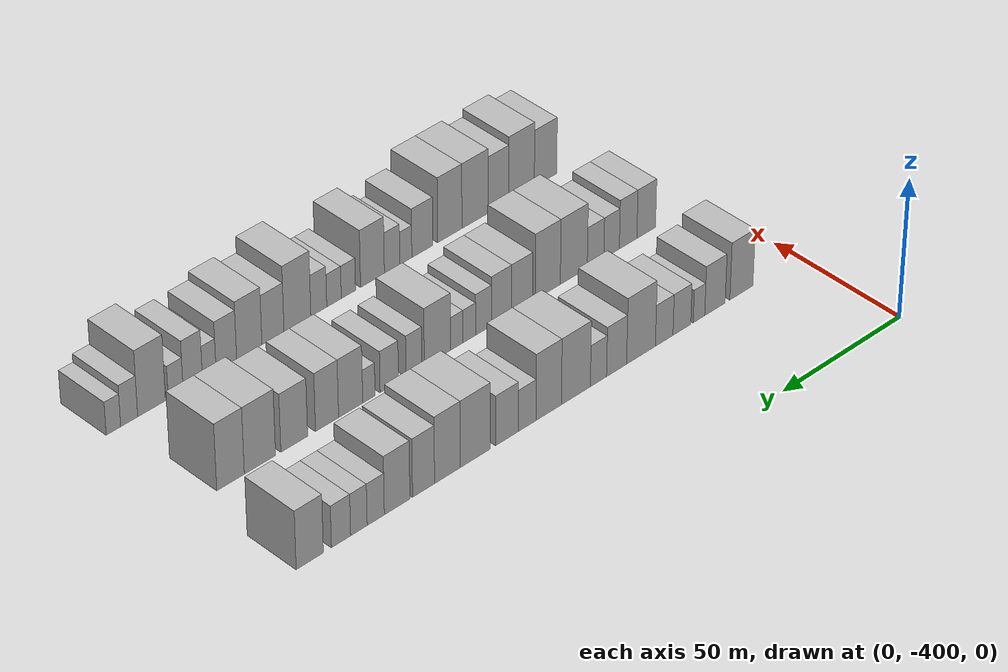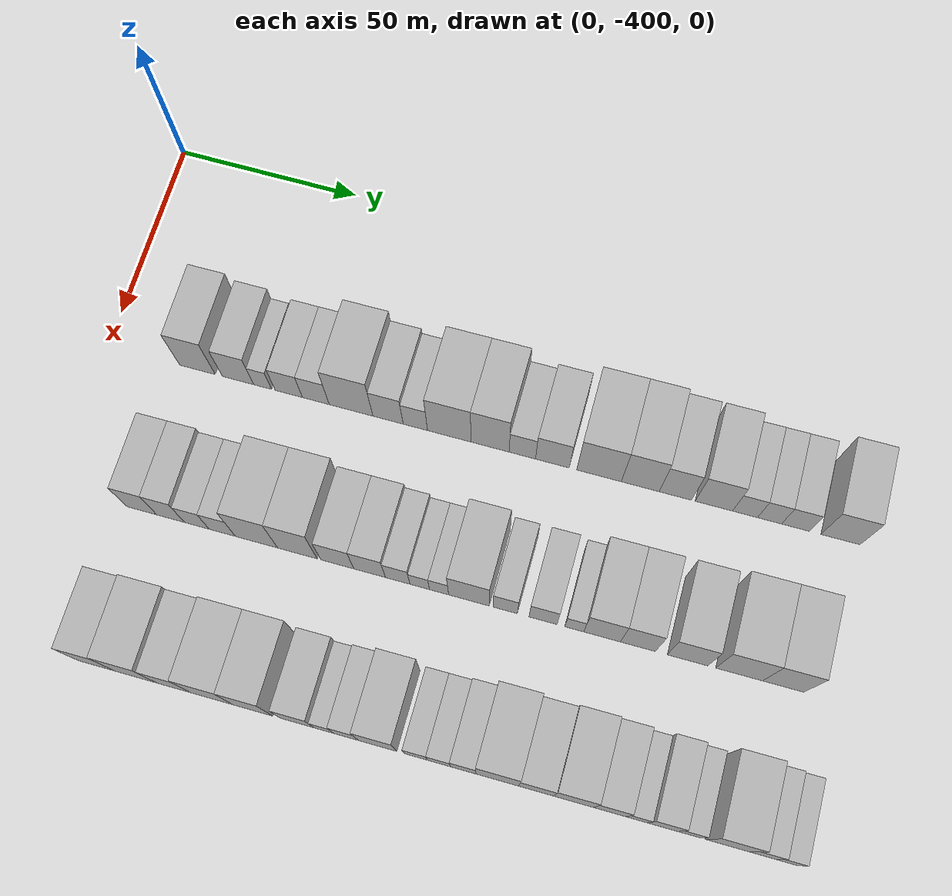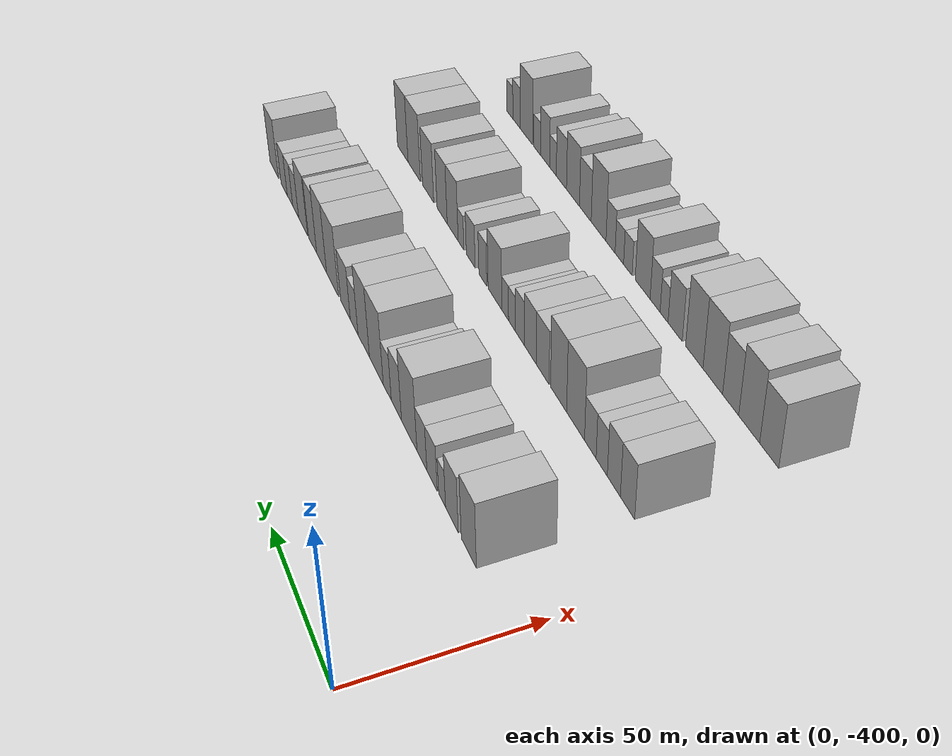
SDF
<sdf version="1.6">
 <world name="default">
  <model name="building_1">
   <static>1</static>
   <pose>50.0000 -375.0532 0 0.000000 0.000000 0.000000</pose>
   <link name="link">
    <pose>0 0 10.50 0 0 0</pose>
    <collision name="collision"><geometry><box><size>20.0000 9.8936 21.0000</size></box></geometry></collision>
    <visual name="visual">
     <cast_shadows>0</cast_shadows>
     <geometry><box><size>20.0000 9.8936 21.0000</size></box></geometry>
     <material>
      <script>
       <uri>model://HANNAS_wall/materials/scripts</uri>
       <uri>model://HANNAS_wall/materials/textures</uri>
       <name>vrc/HANNAS_wall</name>
      </script>
     </material>
    </visual>
   </link>
  </model>
  <model name="building_2">
   <static>1</static>
   <pose>50.0000 -363.7577 0 0.000000 0.000000 0.000000</pose>
   <link name="link">
    <pose>0 0 9.00 0 0 0</pose>
    <collision name="collision"><geometry><box><size>20.0000 8.6974 18.0000</size></box></geometry></collision>
    <visual name="visual">
     <cast_shadows>0</cast_shadows>
     <geometry><box><size>20.0000 8.6974 18.0000</size></box></geometry>
     <material>
      <script>
       <uri>model://HANNAS_wall/materials/scripts</uri>
       <uri>model://HANNAS_wall/materials/textures</uri>
       <name>vrc/HANNAS_wall</name>
      </script>
     </material>
    </visual>
   </link>
  </model>
  <model name="building_3">
   <static>1</static>
   <pose>50.0000 -356.9711 0 0.000000 0.000000 0.000000</pose>
   <link name="link">
    <pose>0 0 6.00 0 0 0</pose>
    <collision name="collision"><geometry><box><size>20.0000 4.8758 12.0000</size></box></geometry></collision>
    <visual name="visual">
     <cast_shadows>0</cast_shadows>
     <geometry><box><size>20.0000 4.8758 12.0000</size></box></geometry>
     <material>
      <script>
       <uri>model://HANNAS_wall/materials/scripts</uri>
       <uri>model://HANNAS_wall/materials/textures</uri>
       <name>vrc/HANNAS_wall</name>
      </script>
     </material>
    </visual>
   </link>
  </model>
  <model name="building_4">
   <static>1</static>
   <pose>50.0000 -349.7861 0 0.000000 0.000000 0.000000</pose>
   <link name="link">
    <pose>0 0 7.50 0 0 0</pose>
    <collision name="collision"><geometry><box><size>20.0000 7.4941 15.0000</size></box></geometry></collision>
    <visual name="visual">
     <cast_shadows>0</cast_shadows>
     <geometry><box><size>20.0000 7.4941 15.0000</size></box></geometry>
     <material>
      <script>
       <uri>model://HANNAS_wall/materials/scripts</uri>
       <uri>model://HANNAS_wall/materials/textures</uri>
       <name>vrc/HANNAS_wall</name>
      </script>
     </material>
    </visual>
   </link>
  </model>
  <model name="building_5">
   <static>1</static>
   <pose>50.0000 -342.3699 0 0.000000 0.000000 0.000000</pose>
   <link name="link">
    <pose>0 0 7.50 0 0 0</pose>
    <collision name="collision"><geometry><box><size>20.0000 7.3385 15.0000</size></box></geometry></collision>
    <visual name="visual">
     <cast_shadows>0</cast_shadows>
     <geometry><box><size>20.0000 7.3385 15.0000</size></box></geometry>
     <material>
      <script>
       <uri>model://HANNAS_wall/materials/scripts</uri>
       <uri>model://HANNAS_wall/materials/textures</uri>
       <name>vrc/HANNAS_wall</name>
      </script>
     </material>
    </visual>
   </link>
  </model>
  <model name="building_6">
   <static>1</static>
   <pose>50.0000 -332.7374 0 0.000000 0.000000 0.000000</pose>
   <link name="link">
    <pose>0 0 12.00 0 0 0</pose>
    <collision name="collision"><geometry><box><size>20.0000 11.9265 24.0000</size></box></geometry></collision>
    <visual name="visual">
     <cast_shadows>0</cast_shadows>
     <geometry><box><size>20.0000 11.9265 24.0000</size></box></geometry>
     <material>
      <script>
       <uri>model://HANNAS_wall/materials/scripts</uri>
       <uri>model://HANNAS_wall/materials/textures</uri>
       <name>vrc/HANNAS_wall</name>
      </script>
     </material>
    </visual>
   </link>
  </model>
  <model name="building_7">
   <static>1</static>
   <pose>50.0000 -322.6665 0 0.000000 0.000000 0.000000</pose>
   <link name="link">
    <pose>0 0 9.00 0 0 0</pose>
    <collision name="collision"><geometry><box><size>20.0000 8.2152 18.0000</size></box></geometry></collision>
    <visual name="visual">
     <cast_shadows>0</cast_shadows>
     <geometry><box><size>20.0000 8.2152 18.0000</size></box></geometry>
     <material>
      <script>
       <uri>model://HANNAS_wall/materials/scripts</uri>
       <uri>model://HANNAS_wall/materials/textures</uri>
       <name>vrc/HANNAS_wall</name>
      </script>
     </material>
    </visual>
   </link>
  </model>
  <model name="building_8">
   <static>1</static>
   <pose>50.0000 -315.2555 0 0.000000 0.000000 0.000000</pose>
   <link name="link">
    <pose>0 0 7.50 0 0 0</pose>
    <collision name="collision"><geometry><box><size>20.0000 6.6068 15.0000</size></box></geometry></collision>
    <visual name="visual">
     <cast_shadows>0</cast_shadows>
     <geometry><box><size>20.0000 6.6068 15.0000</size></box></geometry>
     <material>
      <script>
       <uri>model://HANNAS_wall/materials/scripts</uri>
       <uri>model://HANNAS_wall/materials/textures</uri>
       <name>vrc/HANNAS_wall</name>
      </script>
     </material>
    </visual>
   </link>
  </model>
  <model name="building_9">
   <static>1</static>
   <pose>50.0000 -306.0808 0 0.000000 0.000000 0.000000</pose>
   <link name="link">
    <pose>0 0 12.00 0 0 0</pose>
    <collision name="collision"><geometry><box><size>20.0000 11.7427 24.0000</size></box></geometry></collision>
    <visual name="visual">
     <cast_shadows>0</cast_shadows>
     <geometry><box><size>20.0000 11.7427 24.0000</size></box></geometry>
     <material>
      <script>
       <uri>model://HANNAS_wall/materials/scripts</uri>
       <uri>model://HANNAS_wall/materials/textures</uri>
       <name>vrc/HANNAS_wall</name>
      </script>
     </material>
    </visual>
   </link>
  </model>
  <model name="building_10">
   <static>1</static>
   <pose>50.0000 -295.1318 0 0.000000 0.000000 0.000000</pose>
   <link name="link">
    <pose>0 0 12.00 0 0 0</pose>
    <collision name="collision"><geometry><box><size>20.0000 10.1552 24.0000</size></box></geometry></collision>
    <visual name="visual">
     <cast_shadows>0</cast_shadows>
     <geometry><box><size>20.0000 10.1552 24.0000</size></box></geometry>
     <material>
      <script>
       <uri>model://HANNAS_wall/materials/scripts</uri>
       <uri>model://HANNAS_wall/materials/textures</uri>
       <name>vrc/HANNAS_wall</name>
      </script>
     </material>
    </visual>
   </link>
  </model>
  <model name="building_11">
   <static>1</static>
   <pose>50.0000 -286.5284 0 0.000000 0.000000 0.000000</pose>
   <link name="link">
    <pose>0 0 7.50 0 0 0</pose>
    <collision name="collision"><geometry><box><size>20.0000 7.0517 15.0000</size></box></geometry></collision>
    <visual name="visual">
     <cast_shadows>0</cast_shadows>
     <geometry><box><size>20.0000 7.0517 15.0000</size></box></geometry>
     <material>
      <script>
       <uri>model://HANNAS_wall/materials/scripts</uri>
       <uri>model://HANNAS_wall/materials/textures</uri>
       <name>vrc/HANNAS_wall</name>
      </script>
     </material>
    </visual>
   </link>
  </model>
  <model name="building_12">
   <static>1</static>
   <pose>50.0000 -278.5229 0 0.000000 0.000000 0.000000</pose>
   <link name="link">
    <pose>0 0 9.00 0 0 0</pose>
    <collision name="collision"><geometry><box><size>20.0000 8.9593 18.0000</size></box></geometry></collision>
    <visual name="visual">
     <cast_shadows>0</cast_shadows>
     <geometry><box><size>20.0000 8.9593 18.0000</size></box></geometry>
     <material>
      <script>
       <uri>model://HANNAS_wall/materials/scripts</uri>
       <uri>model://HANNAS_wall/materials/textures</uri>
       <name>vrc/HANNAS_wall</name>
      </script>
     </material>
    </visual>
   </link>
  </model>
  <model name="building_13">
   <static>1</static>
   <pose>50.0000 -266.1553 0 0.000000 0.000000 0.000000</pose>
   <link name="link">
    <pose>0 0 12.00 0 0 0</pose>
    <collision name="collision"><geometry><box><size>20.0000 11.7759 24.0000</size></box></geometry></collision>
    <visual name="visual">
     <cast_shadows>0</cast_shadows>
     <geometry><box><size>20.0000 11.7759 24.0000</size></box></geometry>
     <material>
      <script>
       <uri>model://HANNAS_wall/materials/scripts</uri>
       <uri>model://HANNAS_wall/materials/textures</uri>
       <name>vrc/HANNAS_wall</name>
      </script>
     </material>
    </visual>
   </link>
  </model>
  <model name="building_14">
   <static>1</static>
   <pose>50.0000 -255.2726 0 0.000000 0.000000 0.000000</pose>
   <link name="link">
    <pose>0 0 12.00 0 0 0</pose>
    <collision name="collision"><geometry><box><size>20.0000 9.9895 24.0000</size></box></geometry></collision>
    <visual name="visual">
     <cast_shadows>0</cast_shadows>
     <geometry><box><size>20.0000 9.9895 24.0000</size></box></geometry>
     <material>
      <script>
       <uri>model://HANNAS_wall/materials/scripts</uri>
       <uri>model://HANNAS_wall/materials/textures</uri>
       <name>vrc/HANNAS_wall</name>
      </script>
     </material>
    </visual>
   </link>
  </model>
  <model name="building_15">
   <static>1</static>
   <pose>50.0000 -246.0600 0 0.000000 0.000000 0.000000</pose>
   <link name="link">
    <pose>0 0 10.50 0 0 0</pose>
    <collision name="collision"><geometry><box><size>20.0000 8.4355 21.0000</size></box></geometry></collision>
    <visual name="visual">
     <cast_shadows>0</cast_shadows>
     <geometry><box><size>20.0000 8.4355 21.0000</size></box></geometry>
     <material>
      <script>
       <uri>model://HANNAS_wall/materials/scripts</uri>
       <uri>model://HANNAS_wall/materials/textures</uri>
       <name>vrc/HANNAS_wall</name>
      </script>
     </material>
    </visual>
   </link>
  </model>
  <model name="building_16">
   <static>1</static>
   <pose>50.0000 -235.9735 0 0.000000 0.000000 0.000000</pose>
   <link name="link">
    <pose>0 0 10.50 0 0 0</pose>
    <collision name="collision"><geometry><box><size>20.0000 9.7375 21.0000</size></box></geometry></collision>
    <visual name="visual">
     <cast_shadows>0</cast_shadows>
     <geometry><box><size>20.0000 9.7375 21.0000</size></box></geometry>
     <material>
      <script>
       <uri>model://HANNAS_wall/materials/scripts</uri>
       <uri>model://HANNAS_wall/materials/textures</uri>
       <name>vrc/HANNAS_wall</name>
      </script>
     </material>
    </visual>
   </link>
  </model>
  <model name="building_17">
   <static>1</static>
   <pose>50.0000 -227.8595 0 0.000000 0.000000 0.000000</pose>
   <link name="link">
    <pose>0 0 7.50 0 0 0</pose>
    <collision name="collision"><geometry><box><size>20.0000 6.4905 15.0000</size></box></geometry></collision>
    <visual name="visual">
     <cast_shadows>0</cast_shadows>
     <geometry><box><size>20.0000 6.4905 15.0000</size></box></geometry>
     <material>
      <script>
       <uri>model://HANNAS_wall/materials/scripts</uri>
       <uri>model://HANNAS_wall/materials/textures</uri>
       <name>vrc/HANNAS_wall</name>
      </script>
     </material>
    </visual>
   </link>
  </model>
  <model name="building_18">
   <static>1</static>
   <pose>50.0000 -221.5160 0 0.000000 0.000000 0.000000</pose>
   <link name="link">
    <pose>0 0 7.50 0 0 0</pose>
    <collision name="collision"><geometry><box><size>20.0000 6.1965 15.0000</size></box></geometry></collision>
    <visual name="visual">
     <cast_shadows>0</cast_shadows>
     <geometry><box><size>20.0000 6.1965 15.0000</size></box></geometry>
     <material>
      <script>
       <uri>model://HANNAS_wall/materials/scripts</uri>
       <uri>model://HANNAS_wall/materials/textures</uri>
       <name>vrc/HANNAS_wall</name>
      </script>
     </material>
    </visual>
   </link>
  </model>
  <model name="building_19">
   <static>1</static>
   <pose>50.0000 -214.8344 0 0.000000 0.000000 0.000000</pose>
   <link name="link">
    <pose>0 0 7.50 0 0 0</pose>
    <collision name="collision"><geometry><box><size>20.0000 7.1667 15.0000</size></box></geometry></collision>
    <visual name="visual">
     <cast_shadows>0</cast_shadows>
     <geometry><box><size>20.0000 7.1667 15.0000</size></box></geometry>
     <material>
      <script>
       <uri>model://HANNAS_wall/materials/scripts</uri>
       <uri>model://HANNAS_wall/materials/textures</uri>
       <name>vrc/HANNAS_wall</name>
      </script>
     </material>
    </visual>
   </link>
  </model>
  <model name="building_20">
   <static>1</static>
   <pose>50.0000 -203.2203 0 0.000000 0.000000 0.000000</pose>
   <link name="link">
    <pose>0 0 10.50 0 0 0</pose>
    <collision name="collision"><geometry><box><size>20.0000 10.0615 21.0000</size></box></geometry></collision>
    <visual name="visual">
     <cast_shadows>0</cast_shadows>
     <geometry><box><size>20.0000 10.0615 21.0000</size></box></geometry>
     <material>
      <script>
       <uri>model://HANNAS_wall/materials/scripts</uri>
       <uri>model://HANNAS_wall/materials/textures</uri>
       <name>vrc/HANNAS_wall</name>
      </script>
     </material>
    </visual>
   </link>
  </model>
  <model name="building_83">
   <static>1</static>
   <pose>90.0000 -375.9981 0 0.000000 0.000000 0.000000</pose>
   <link name="link">
    <pose>0 0 9.00 0 0 0</pose>
    <collision name="collision"><geometry><box><size>20.0000 8.0039 18.0000</size></box></geometry></collision>
    <visual name="visual">
     <cast_shadows>0</cast_shadows>
     <geometry><box><size>20.0000 8.0039 18.0000</size></box></geometry>
     <material>
      <script>
       <uri>model://HANNAS_wall/materials/scripts</uri>
       <uri>model://HANNAS_wall/materials/textures</uri>
       <name>vrc/HANNAS_wall</name>
      </script>
     </material>
    </visual>
   </link>
  </model>
  <model name="building_84">
   <static>1</static>
   <pose>90.0000 -368.2565 0 0.000000 0.000000 0.000000</pose>
   <link name="link">
    <pose>0 0 9.00 0 0 0</pose>
    <collision name="collision"><geometry><box><size>20.0000 7.4793 18.0000</size></box></geometry></collision>
    <visual name="visual">
     <cast_shadows>0</cast_shadows>
     <geometry><box><size>20.0000 7.4793 18.0000</size></box></geometry>
     <material>
      <script>
       <uri>model://HANNAS_wall/materials/scripts</uri>
       <uri>model://HANNAS_wall/materials/textures</uri>
       <name>vrc/HANNAS_wall</name>
      </script>
     </material>
    </visual>
   </link>
  </model>
  <model name="building_85">
   <static>1</static>
   <pose>90.0000 -361.2216 0 0.000000 0.000000 0.000000</pose>
   <link name="link">
    <pose>0 0 7.50 0 0 0</pose>
    <collision name="collision"><geometry><box><size>20.0000 6.5905 15.0000</size></box></geometry></collision>
    <visual name="visual">
     <cast_shadows>0</cast_shadows>
     <geometry><box><size>20.0000 6.5905 15.0000</size></box></geometry>
     <material>
      <script>
       <uri>model://HANNAS_wall/materials/scripts</uri>
       <uri>model://HANNAS_wall/materials/textures</uri>
       <name>vrc/HANNAS_wall</name>
      </script>
     </material>
    </visual>
   </link>
  </model>
  <model name="building_86">
   <static>1</static>
   <pose>90.0000 -354.4271 0 0.000000 0.000000 0.000000</pose>
   <link name="link">
    <pose>0 0 7.50 0 0 0</pose>
    <collision name="collision"><geometry><box><size>20.0000 6.9986 15.0000</size></box></geometry></collision>
    <visual name="visual">
     <cast_shadows>0</cast_shadows>
     <geometry><box><size>20.0000 6.9986 15.0000</size></box></geometry>
     <material>
      <script>
       <uri>model://HANNAS_wall/materials/scripts</uri>
       <uri>model://HANNAS_wall/materials/textures</uri>
       <name>vrc/HANNAS_wall</name>
      </script>
     </material>
    </visual>
   </link>
  </model>
  <model name="building_87">
   <static>1</static>
   <pose>90.0000 -345.3123 0 0.000000 0.000000 0.000000</pose>
   <link name="link">
    <pose>0 0 12.00 0 0 0</pose>
    <collision name="collision"><geometry><box><size>20.0000 11.2309 24.0000</size></box></geometry></collision>
    <visual name="visual">
     <cast_shadows>0</cast_shadows>
     <geometry><box><size>20.0000 11.2309 24.0000</size></box></geometry>
     <material>
      <script>
       <uri>model://HANNAS_wall/materials/scripts</uri>
       <uri>model://HANNAS_wall/materials/textures</uri>
       <name>vrc/HANNAS_wall</name>
      </script>
     </material>
    </visual>
   </link>
  </model>
  <model name="building_88">
   <static>1</static>
   <pose>90.0000 -334.4737 0 0.000000 0.000000 0.000000</pose>
   <link name="link">
    <pose>0 0 12.00 0 0 0</pose>
    <collision name="collision"><geometry><box><size>20.0000 10.4464 24.0000</size></box></geometry></collision>
    <visual name="visual">
     <cast_shadows>0</cast_shadows>
     <geometry><box><size>20.0000 10.4464 24.0000</size></box></geometry>
     <material>
      <script>
       <uri>model://HANNAS_wall/materials/scripts</uri>
       <uri>model://HANNAS_wall/materials/textures</uri>
       <name>vrc/HANNAS_wall</name>
      </script>
     </material>
    </visual>
   </link>
  </model>
  <model name="building_89">
   <static>1</static>
   <pose>90.0000 -323.9047 0 0.000000 0.000000 0.000000</pose>
   <link name="link">
    <pose>0 0 9.00 0 0 0</pose>
    <collision name="collision"><geometry><box><size>20.0000 8.6915 18.0000</size></box></geometry></collision>
    <visual name="visual">
     <cast_shadows>0</cast_shadows>
     <geometry><box><size>20.0000 8.6915 18.0000</size></box></geometry>
     <material>
      <script>
       <uri>model://HANNAS_wall/materials/scripts</uri>
       <uri>model://HANNAS_wall/materials/textures</uri>
       <name>vrc/HANNAS_wall</name>
      </script>
     </material>
    </visual>
   </link>
  </model>
  <model name="building_90">
   <static>1</static>
   <pose>90.0000 -315.4207 0 0.000000 0.000000 0.000000</pose>
   <link name="link">
    <pose>0 0 9.00 0 0 0</pose>
    <collision name="collision"><geometry><box><size>20.0000 8.2767 18.0000</size></box></geometry></collision>
    <visual name="visual">
     <cast_shadows>0</cast_shadows>
     <geometry><box><size>20.0000 8.2767 18.0000</size></box></geometry>
     <material>
      <script>
       <uri>model://HANNAS_wall/materials/scripts</uri>
       <uri>model://HANNAS_wall/materials/textures</uri>
       <name>vrc/HANNAS_wall</name>
      </script>
     </material>
    </visual>
   </link>
  </model>
  <model name="building_91">
   <static>1</static>
   <pose>90.0000 -308.0879 0 0.000000 0.000000 0.000000</pose>
   <link name="link">
    <pose>0 0 7.50 0 0 0</pose>
    <collision name="collision"><geometry><box><size>20.0000 6.3890 15.0000</size></box></geometry></collision>
    <visual name="visual">
     <cast_shadows>0</cast_shadows>
     <geometry><box><size>20.0000 6.3890 15.0000</size></box></geometry>
     <material>
      <script>
       <uri>model://HANNAS_wall/materials/scripts</uri>
       <uri>model://HANNAS_wall/materials/textures</uri>
       <name>vrc/HANNAS_wall</name>
      </script>
     </material>
    </visual>
   </link>
  </model>
  <model name="building_92">
   <static>1</static>
   <pose>90.0000 -302.3494 0 0.000000 0.000000 0.000000</pose>
   <link name="link">
    <pose>0 0 6.00 0 0 0</pose>
    <collision name="collision"><geometry><box><size>20.0000 5.0879 12.0000</size></box></geometry></collision>
    <visual name="visual">
     <cast_shadows>0</cast_shadows>
     <geometry><box><size>20.0000 5.0879 12.0000</size></box></geometry>
     <material>
      <script>
       <uri>model://HANNAS_wall/materials/scripts</uri>
       <uri>model://HANNAS_wall/materials/textures</uri>
       <name>vrc/HANNAS_wall</name>
      </script>
     </material>
    </visual>
   </link>
  </model>
  <model name="building_93">
   <static>1</static>
   <pose>90.0000 -297.3240 0 0.000000 0.000000 0.000000</pose>
   <link name="link">
    <pose>0 0 6.00 0 0 0</pose>
    <collision name="collision"><geometry><box><size>20.0000 4.9629 12.0000</size></box></geometry></collision>
    <visual name="visual">
     <cast_shadows>0</cast_shadows>
     <geometry><box><size>20.0000 4.9629 12.0000</size></box></geometry>
     <material>
      <script>
       <uri>model://HANNAS_wall/materials/scripts</uri>
       <uri>model://HANNAS_wall/materials/textures</uri>
       <name>vrc/HANNAS_wall</name>
      </script>
     </material>
    </visual>
   </link>
  </model>
  <model name="building_94">
   <static>1</static>
   <pose>90.0000 -289.5939 0 0.000000 0.000000 0.000000</pose>
   <link name="link">
    <pose>0 0 10.50 0 0 0</pose>
    <collision name="collision"><geometry><box><size>20.0000 10.4972 21.0000</size></box></geometry></collision>
    <visual name="visual">
     <cast_shadows>0</cast_shadows>
     <geometry><box><size>20.0000 10.4972 21.0000</size></box></geometry>
     <material>
      <script>
       <uri>model://HANNAS_wall/materials/scripts</uri>
       <uri>model://HANNAS_wall/materials/textures</uri>
       <name>vrc/HANNAS_wall</name>
      </script>
     </material>
    </visual>
   </link>
  </model>
  <model name="building_95">
   <static>1</static>
   <pose>90.0000 -280.2260 0 0.000000 0.000000 0.000000</pose>
   <link name="link">
    <pose>0 0 7.50 0 0 0</pose>
    <collision name="collision"><geometry><box><size>20.0000 6.2388 15.0000</size></box></geometry></collision>
    <visual name="visual">
     <cast_shadows>0</cast_shadows>
     <geometry><box><size>20.0000 6.2388 15.0000</size></box></geometry>
     <material>
      <script>
       <uri>model://HANNAS_wall/materials/scripts</uri>
       <uri>model://HANNAS_wall/materials/textures</uri>
       <name>vrc/HANNAS_wall</name>
      </script>
     </material>
    </visual>
   </link>
  </model>
  <model name="building_96">
   <static>1</static>
   <pose>90.0000 -270.5159 0 0.000000 0.000000 0.000000</pose>
   <link name="link">
    <pose>0 0 7.50 0 0 0</pose>
    <collision name="collision"><geometry><box><size>20.0000 7.1814 15.0000</size></box></geometry></collision>
    <visual name="visual">
     <cast_shadows>0</cast_shadows>
     <geometry><box><size>20.0000 7.1814 15.0000</size></box></geometry>
     <material>
      <script>
       <uri>model://HANNAS_wall/materials/scripts</uri>
       <uri>model://HANNAS_wall/materials/textures</uri>
       <name>vrc/HANNAS_wall</name>
      </script>
     </material>
    </visual>
   </link>
  </model>
  <model name="building_97">
   <static>1</static>
   <pose>90.0000 -262.5241 0 0.000000 0.000000 0.000000</pose>
   <link name="link">
    <pose>0 0 6.00 0 0 0</pose>
    <collision name="collision"><geometry><box><size>20.0000 4.8022 12.0000</size></box></geometry></collision>
    <visual name="visual">
     <cast_shadows>0</cast_shadows>
     <geometry><box><size>20.0000 4.8022 12.0000</size></box></geometry>
     <material>
      <script>
       <uri>model://HANNAS_wall/materials/scripts</uri>
       <uri>model://HANNAS_wall/materials/textures</uri>
       <name>vrc/HANNAS_wall</name>
      </script>
     </material>
    </visual>
   </link>
  </model>
  <model name="building_98">
   <static>1</static>
   <pose>90.0000 -255.4423 0 0.000000 0.000000 0.000000</pose>
   <link name="link">
    <pose>0 0 10.50 0 0 0</pose>
    <collision name="collision"><geometry><box><size>20.0000 9.3615 21.0000</size></box></geometry></collision>
    <visual name="visual">
     <cast_shadows>0</cast_shadows>
     <geometry><box><size>20.0000 9.3615 21.0000</size></box></geometry>
     <material>
      <script>
       <uri>model://HANNAS_wall/materials/scripts</uri>
       <uri>model://HANNAS_wall/materials/textures</uri>
       <name>vrc/HANNAS_wall</name>
      </script>
     </material>
    </visual>
   </link>
  </model>
  <model name="building_99">
   <static>1</static>
   <pose>90.0000 -246.3172 0 0.000000 0.000000 0.000000</pose>
   <link name="link">
    <pose>0 0 10.50 0 0 0</pose>
    <collision name="collision"><geometry><box><size>20.0000 8.8886 21.0000</size></box></geometry></collision>
    <visual name="visual">
     <cast_shadows>0</cast_shadows>
     <geometry><box><size>20.0000 8.8886 21.0000</size></box></geometry>
     <material>
      <script>
       <uri>model://HANNAS_wall/materials/scripts</uri>
       <uri>model://HANNAS_wall/materials/textures</uri>
       <name>vrc/HANNAS_wall</name>
      </script>
     </material>
    </visual>
   </link>
  </model>
  <model name="building_100">
   <static>1</static>
   <pose>90.0000 -233.7819 0 0.000000 0.000000 0.000000</pose>
   <link name="link">
    <pose>0 0 10.50 0 0 0</pose>
    <collision name="collision"><geometry><box><size>20.0000 10.1820 21.0000</size></box></geometry></collision>
    <visual name="visual">
     <cast_shadows>0</cast_shadows>
     <geometry><box><size>20.0000 10.1820 21.0000</size></box></geometry>
     <material>
      <script>
       <uri>model://HANNAS_wall/materials/scripts</uri>
       <uri>model://HANNAS_wall/materials/textures</uri>
       <name>vrc/HANNAS_wall</name>
      </script>
     </material>
    </visual>
   </link>
  </model>
  <model name="building_101">
   <static>1</static>
   <pose>90.0000 -220.8205 0 0.000000 0.000000 0.000000</pose>
   <link name="link">
    <pose>0 0 12.00 0 0 0</pose>
    <collision name="collision"><geometry><box><size>20.0000 11.7408 24.0000</size></box></geometry></collision>
    <visual name="visual">
     <cast_shadows>0</cast_shadows>
     <geometry><box><size>20.0000 11.7408 24.0000</size></box></geometry>
     <material>
      <script>
       <uri>model://HANNAS_wall/materials/scripts</uri>
       <uri>model://HANNAS_wall/materials/textures</uri>
       <name>vrc/HANNAS_wall</name>
      </script>
     </material>
    </visual>
   </link>
  </model>
  <model name="building_102">
   <static>1</static>
   <pose>90.0000 -209.8123 0 0.000000 0.000000 0.000000</pose>
   <link name="link">
    <pose>0 0 12.00 0 0 0</pose>
    <collision name="collision"><geometry><box><size>20.0000 10.2757 24.0000</size></box></geometry></collision>
    <visual name="visual">
     <cast_shadows>0</cast_shadows>
     <geometry><box><size>20.0000 10.2757 24.0000</size></box></geometry>
     <material>
      <script>
       <uri>model://HANNAS_wall/materials/scripts</uri>
       <uri>model://HANNAS_wall/materials/textures</uri>
       <name>vrc/HANNAS_wall</name>
      </script>
     </material>
    </visual>
   </link>
  </model>
  <model name="building_167">
   <static>1</static>
   <pose>130.0000 -373.2091 0 0.000000 0.000000 0.000000</pose>
   <link name="link">
    <pose>0 0 10.50 0 0 0</pose>
    <collision name="collision"><geometry><box><size>20.0000 9.5818 21.0000</size></box></geometry></collision>
    <visual name="visual">
     <cast_shadows>0</cast_shadows>
     <geometry><box><size>20.0000 9.5818 21.0000</size></box></geometry>
     <material>
      <script>
       <uri>model://HANNAS_wall/materials/scripts</uri>
       <uri>model://HANNAS_wall/materials/textures</uri>
       <name>vrc/HANNAS_wall</name>
      </script>
     </material>
    </visual>
   </link>
  </model>
  <model name="building_168">
   <static>1</static>
   <pose>130.0000 -362.9755 0 0.000000 0.000000 0.000000</pose>
   <link name="link">
    <pose>0 0 12.00 0 0 0</pose>
    <collision name="collision"><geometry><box><size>20.0000 10.8854 24.0000</size></box></geometry></collision>
    <visual name="visual">
     <cast_shadows>0</cast_shadows>
     <geometry><box><size>20.0000 10.8854 24.0000</size></box></geometry>
     <material>
      <script>
       <uri>model://HANNAS_wall/materials/scripts</uri>
       <uri>model://HANNAS_wall/materials/textures</uri>
       <name>vrc/HANNAS_wall</name>
      </script>
     </material>
    </visual>
   </link>
  </model>
  <model name="building_169">
   <static>1</static>
   <pose>130.0000 -353.1893 0 0.000000 0.000000 0.000000</pose>
   <link name="link">
    <pose>0 0 10.50 0 0 0</pose>
    <collision name="collision"><geometry><box><size>20.0000 8.6870 21.0000</size></box></geometry></collision>
    <visual name="visual">
     <cast_shadows>0</cast_shadows>
     <geometry><box><size>20.0000 8.6870 21.0000</size></box></geometry>
     <material>
      <script>
       <uri>model://HANNAS_wall/materials/scripts</uri>
       <uri>model://HANNAS_wall/materials/textures</uri>
       <name>vrc/HANNAS_wall</name>
      </script>
     </material>
    </visual>
   </link>
  </model>
  <model name="building_170">
   <static>1</static>
   <pose>130.0000 -343.3688 0 0.000000 0.000000 0.000000</pose>
   <link name="link">
    <pose>0 0 12.00 0 0 0</pose>
    <collision name="collision"><geometry><box><size>20.0000 10.9540 24.0000</size></box></geometry></collision>
    <visual name="visual">
     <cast_shadows>0</cast_shadows>
     <geometry><box><size>20.0000 10.9540 24.0000</size></box></geometry>
     <material>
      <script>
       <uri>model://HANNAS_wall/materials/scripts</uri>
       <uri>model://HANNAS_wall/materials/textures</uri>
       <name>vrc/HANNAS_wall</name>
      </script>
     </material>
    </visual>
   </link>
  </model>
  <model name="building_171">
   <static>1</static>
   <pose>130.0000 -332.8527 0 0.000000 0.000000 0.000000</pose>
   <link name="link">
    <pose>0 0 12.00 0 0 0</pose>
    <collision name="collision"><geometry><box><size>20.0000 10.0782 24.0000</size></box></geometry></collision>
    <visual name="visual">
     <cast_shadows>0</cast_shadows>
     <geometry><box><size>20.0000 10.0782 24.0000</size></box></geometry>
     <material>
      <script>
       <uri>model://HANNAS_wall/materials/scripts</uri>
       <uri>model://HANNAS_wall/materials/textures</uri>
       <name>vrc/HANNAS_wall</name>
      </script>
     </material>
    </visual>
   </link>
  </model>
  <model name="building_172">
   <static>1</static>
   <pose>130.0000 -321.5196 0 0.000000 0.000000 0.000000</pose>
   <link name="link">
    <pose>0 0 9.00 0 0 0</pose>
    <collision name="collision"><geometry><box><size>20.0000 8.5880 18.0000</size></box></geometry></collision>
    <visual name="visual">
     <cast_shadows>0</cast_shadows>
     <geometry><box><size>20.0000 8.5880 18.0000</size></box></geometry>
     <material>
      <script>
       <uri>model://HANNAS_wall/materials/scripts</uri>
       <uri>model://HANNAS_wall/materials/textures</uri>
       <name>vrc/HANNAS_wall</name>
      </script>
     </material>
    </visual>
   </link>
  </model>
  <model name="building_173">
   <static>1</static>
   <pose>130.0000 -314.7734 0 0.000000 0.000000 0.000000</pose>
   <link name="link">
    <pose>0 0 6.00 0 0 0</pose>
    <collision name="collision"><geometry><box><size>20.0000 4.9046 12.0000</size></box></geometry></collision>
    <visual name="visual">
     <cast_shadows>0</cast_shadows>
     <geometry><box><size>20.0000 4.9046 12.0000</size></box></geometry>
     <material>
      <script>
       <uri>model://HANNAS_wall/materials/scripts</uri>
       <uri>model://HANNAS_wall/materials/textures</uri>
       <name>vrc/HANNAS_wall</name>
      </script>
     </material>
    </visual>
   </link>
  </model>
  <model name="building_174">
   <static>1</static>
   <pose>130.0000 -309.1828 0 0.000000 0.000000 0.000000</pose>
   <link name="link">
    <pose>0 0 7.50 0 0 0</pose>
    <collision name="collision"><geometry><box><size>20.0000 6.2766 15.0000</size></box></geometry></collision>
    <visual name="visual">
     <cast_shadows>0</cast_shadows>
     <geometry><box><size>20.0000 6.2766 15.0000</size></box></geometry>
     <material>
      <script>
       <uri>model://HANNAS_wall/materials/scripts</uri>
       <uri>model://HANNAS_wall/materials/textures</uri>
       <name>vrc/HANNAS_wall</name>
      </script>
     </material>
    </visual>
   </link>
  </model>
  <model name="building_175">
   <static>1</static>
   <pose>130.0000 -301.2279 0 0.000000 0.000000 0.000000</pose>
   <link name="link">
    <pose>0 0 10.50 0 0 0</pose>
    <collision name="collision"><geometry><box><size>20.0000 9.6331 21.0000</size></box></geometry></collision>
    <visual name="visual">
     <cast_shadows>0</cast_shadows>
     <geometry><box><size>20.0000 9.6331 21.0000</size></box></geometry>
     <material>
      <script>
       <uri>model://HANNAS_wall/materials/scripts</uri>
       <uri>model://HANNAS_wall/materials/textures</uri>
       <name>vrc/HANNAS_wall</name>
      </script>
     </material>
    </visual>
   </link>
  </model>
  <model name="building_176">
   <static>1</static>
   <pose>130.0000 -291.5539 0 0.000000 0.000000 0.000000</pose>
   <link name="link">
    <pose>0 0 6.00 0 0 0</pose>
    <collision name="collision"><geometry><box><size>20.0000 5.7150 12.0000</size></box></geometry></collision>
    <visual name="visual">
     <cast_shadows>0</cast_shadows>
     <geometry><box><size>20.0000 5.7150 12.0000</size></box></geometry>
     <material>
      <script>
       <uri>model://HANNAS_wall/materials/scripts</uri>
       <uri>model://HANNAS_wall/materials/textures</uri>
       <name>vrc/HANNAS_wall</name>
      </script>
     </material>
    </visual>
   </link>
  </model>
  <model name="building_177">
   <static>1</static>
   <pose>130.0000 -285.8014 0 0.000000 0.000000 0.000000</pose>
   <link name="link">
    <pose>0 0 6.00 0 0 0</pose>
    <collision name="collision"><geometry><box><size>20.0000 5.7899 12.0000</size></box></geometry></collision>
    <visual name="visual">
     <cast_shadows>0</cast_shadows>
     <geometry><box><size>20.0000 5.7899 12.0000</size></box></geometry>
     <material>
      <script>
       <uri>model://HANNAS_wall/materials/scripts</uri>
       <uri>model://HANNAS_wall/materials/textures</uri>
       <name>vrc/HANNAS_wall</name>
      </script>
     </material>
    </visual>
   </link>
  </model>
  <model name="building_178">
   <static>1</static>
   <pose>130.0000 -279.7529 0 0.000000 0.000000 0.000000</pose>
   <link name="link">
    <pose>0 0 7.50 0 0 0</pose>
    <collision name="collision"><geometry><box><size>20.0000 6.3071 15.0000</size></box></geometry></collision>
    <visual name="visual">
     <cast_shadows>0</cast_shadows>
     <geometry><box><size>20.0000 6.3071 15.0000</size></box></geometry>
     <material>
      <script>
       <uri>model://HANNAS_wall/materials/scripts</uri>
       <uri>model://HANNAS_wall/materials/textures</uri>
       <name>vrc/HANNAS_wall</name>
      </script>
     </material>
    </visual>
   </link>
  </model>
  <model name="building_179">
   <static>1</static>
   <pose>130.0000 -271.3128 0 0.000000 0.000000 0.000000</pose>
   <link name="link">
    <pose>0 0 12.00 0 0 0</pose>
    <collision name="collision"><geometry><box><size>20.0000 10.5730 24.0000</size></box></geometry></collision>
    <visual name="visual">
     <cast_shadows>0</cast_shadows>
     <geometry><box><size>20.0000 10.5730 24.0000</size></box></geometry>
     <material>
      <script>
       <uri>model://HANNAS_wall/materials/scripts</uri>
       <uri>model://HANNAS_wall/materials/textures</uri>
       <name>vrc/HANNAS_wall</name>
      </script>
     </material>
    </visual>
   </link>
  </model>
  <model name="building_180">
   <static>1</static>
   <pose>130.0000 -261.7200 0 0.000000 0.000000 0.000000</pose>
   <link name="link">
    <pose>0 0 9.00 0 0 0</pose>
    <collision name="collision"><geometry><box><size>20.0000 8.6127 18.0000</size></box></geometry></collision>
    <visual name="visual">
     <cast_shadows>0</cast_shadows>
     <geometry><box><size>20.0000 8.6127 18.0000</size></box></geometry>
     <material>
      <script>
       <uri>model://HANNAS_wall/materials/scripts</uri>
       <uri>model://HANNAS_wall/materials/textures</uri>
       <name>vrc/HANNAS_wall</name>
      </script>
     </material>
    </visual>
   </link>
  </model>
  <model name="building_181">
   <static>1</static>
   <pose>130.0000 -252.5011 0 0.000000 0.000000 0.000000</pose>
   <link name="link">
    <pose>0 0 10.50 0 0 0</pose>
    <collision name="collision"><geometry><box><size>20.0000 9.8249 21.0000</size></box></geometry></collision>
    <visual name="visual">
     <cast_shadows>0</cast_shadows>
     <geometry><box><size>20.0000 9.8249 21.0000</size></box></geometry>
     <material>
      <script>
       <uri>model://HANNAS_wall/materials/scripts</uri>
       <uri>model://HANNAS_wall/materials/textures</uri>
       <name>vrc/HANNAS_wall</name>
      </script>
     </material>
    </visual>
   </link>
  </model>
  <model name="building_182">
   <static>1</static>
   <pose>130.0000 -243.6366 0 0.000000 0.000000 0.000000</pose>
   <link name="link">
    <pose>0 0 9.00 0 0 0</pose>
    <collision name="collision"><geometry><box><size>20.0000 7.9043 18.0000</size></box></geometry></collision>
    <visual name="visual">
     <cast_shadows>0</cast_shadows>
     <geometry><box><size>20.0000 7.9043 18.0000</size></box></geometry>
     <material>
      <script>
       <uri>model://HANNAS_wall/materials/scripts</uri>
       <uri>model://HANNAS_wall/materials/textures</uri>
       <name>vrc/HANNAS_wall</name>
      </script>
     </material>
    </visual>
   </link>
  </model>
  <model name="building_183">
   <static>1</static>
   <pose>130.0000 -237.0806 0 0.000000 0.000000 0.000000</pose>
   <link name="link">
    <pose>0 0 6.00 0 0 0</pose>
    <collision name="collision"><geometry><box><size>20.0000 5.2076 12.0000</size></box></geometry></collision>
    <visual name="visual">
     <cast_shadows>0</cast_shadows>
     <geometry><box><size>20.0000 5.2076 12.0000</size></box></geometry>
     <material>
      <script>
       <uri>model://HANNAS_wall/materials/scripts</uri>
       <uri>model://HANNAS_wall/materials/textures</uri>
       <name>vrc/HANNAS_wall</name>
      </script>
     </material>
    </visual>
   </link>
  </model>
  <model name="building_184">
   <static>1</static>
   <pose>130.0000 -230.8010 0 0.000000 0.000000 0.000000</pose>
   <link name="link">
    <pose>0 0 9.00 0 0 0</pose>
    <collision name="collision"><geometry><box><size>20.0000 7.3517 18.0000</size></box></geometry></collision>
    <visual name="visual">
     <cast_shadows>0</cast_shadows>
     <geometry><box><size>20.0000 7.3517 18.0000</size></box></geometry>
     <material>
      <script>
       <uri>model://HANNAS_wall/materials/scripts</uri>
       <uri>model://HANNAS_wall/materials/textures</uri>
       <name>vrc/HANNAS_wall</name>
      </script>
     </material>
    </visual>
   </link>
  </model>
  <model name="building_185">
   <static>1</static>
   <pose>130.0000 -224.3022 0 0.000000 0.000000 0.000000</pose>
   <link name="link">
    <pose>0 0 6.00 0 0 0</pose>
    <collision name="collision"><geometry><box><size>20.0000 5.6459 12.0000</size></box></geometry></collision>
    <visual name="visual">
     <cast_shadows>0</cast_shadows>
     <geometry><box><size>20.0000 5.6459 12.0000</size></box></geometry>
     <material>
      <script>
       <uri>model://HANNAS_wall/materials/scripts</uri>
       <uri>model://HANNAS_wall/materials/textures</uri>
       <name>vrc/HANNAS_wall</name>
      </script>
     </material>
    </visual>
   </link>
  </model>
  <model name="building_186">
   <static>1</static>
   <pose>130.0000 -215.2591 0 0.000000 0.000000 0.000000</pose>
   <link name="link">
    <pose>0 0 12.00 0 0 0</pose>
    <collision name="collision"><geometry><box><size>20.0000 10.4404 24.0000</size></box></geometry></collision>
    <visual name="visual">
     <cast_shadows>0</cast_shadows>
     <geometry><box><size>20.0000 10.4404 24.0000</size></box></geometry>
     <material>
      <script>
       <uri>model://HANNAS_wall/materials/scripts</uri>
       <uri>model://HANNAS_wall/materials/textures</uri>
       <name>vrc/HANNAS_wall</name>
      </script>
     </material>
    </visual>
   </link>
  </model>
  <model name="building_187">
   <static>1</static>
   <pose>130.0000 -206.8695 0 0.000000 0.000000 0.000000</pose>
   <link name="link">
    <pose>0 0 7.50 0 0 0</pose>
    <collision name="collision"><geometry><box><size>20.0000 6.3388 15.0000</size></box></geometry></collision>
    <visual name="visual">
     <cast_shadows>0</cast_shadows>
     <geometry><box><size>20.0000 6.3388 15.0000</size></box></geometry>
     <material>
      <script>
       <uri>model://HANNAS_wall/materials/scripts</uri>
       <uri>model://HANNAS_wall/materials/textures</uri>
       <name>vrc/HANNAS_wall</name>
      </script>
     </material>
    </visual>
   </link>
  </model>
  <model name="building_188">
   <static>1</static>
   <pose>130.0000 -201.0095 0 0.000000 0.000000 0.000000</pose>
   <link name="link">
    <pose>0 0 6.00 0 0 0</pose>
    <collision name="collision"><geometry><box><size>20.0000 5.3813 12.0000</size></box></geometry></collision>
    <visual name="visual">
     <cast_shadows>0</cast_shadows>
     <geometry><box><size>20.0000 5.3813 12.0000</size></box></geometry>
     <material>
      <script>
       <uri>model://HANNAS_wall/materials/scripts</uri>
       <uri>model://HANNAS_wall/materials/textures</uri>
       <name>vrc/HANNAS_wall</name>
      </script>
     </material>
    </visual>
   </link>
  </model>
 </world>
</sdf>
